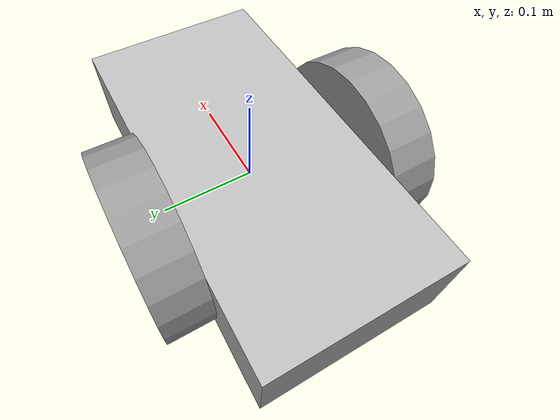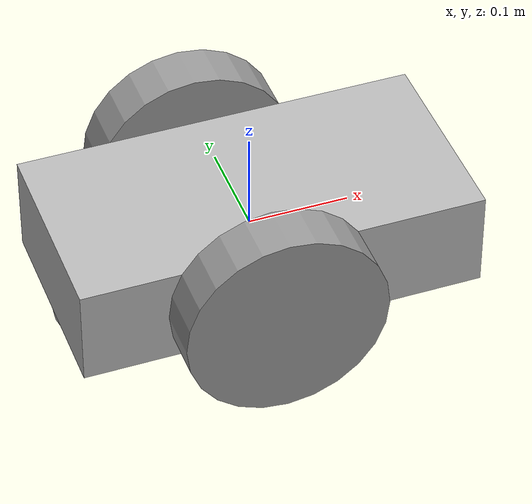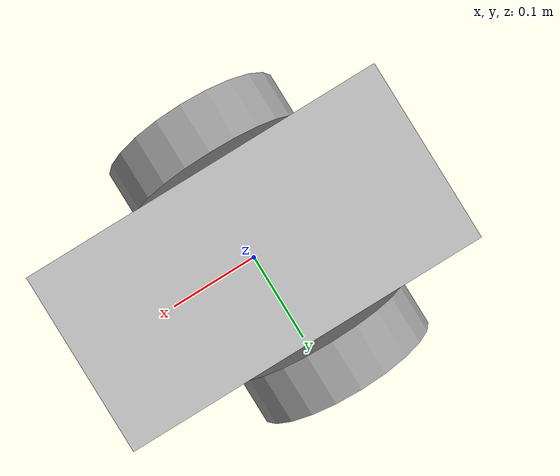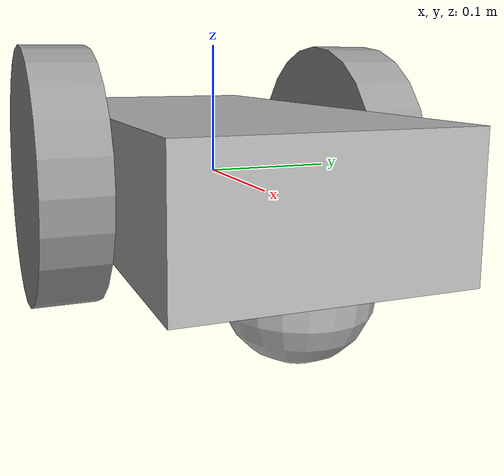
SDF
<?xml version='1.0'?>
<sdf version='1.6'>
  <model name='my_robot'>
    <link name='robot_footprint'>
      <pose frame=''>0 0 0 0 -0 0</pose>
      <inertial>
        <pose frame=''>0 0 0 0 -0 0</pose>
        <mass>15</mass>
        <inertia>
          <ixx>0.1</ixx>
          <ixy>0</ixy>
          <ixz>0</ixz>
          <iyy>0.1</iyy>
          <iyz>0</iyz>
          <izz>0.1</izz>
        </inertia>
      </inertial>
      <self_collide>0</self_collide>
      <enable_wind>0</enable_wind>
      <kinematic>0</kinematic>
      <visual name='robot_footprint_fixed_joint_lump__chassis_visual_visual'>
        <pose frame=''>0 0 0 0 -0 0</pose>
        <geometry>
          <box>
            <size>0.4 0.2 0.1</size>
          </box>
        </geometry>
        <transparency>0</transparency>
        <cast_shadows>1</cast_shadows>
        <material>
          <emissive>0 0 0 1</emissive>
        </material>
      </visual>
      <visual name='robot_footprint_fixed_joint_lump__back_caster_visual_visual_1'>
        <pose frame=''>-0.15 0 -0.05 0 -0 0</pose>
        <geometry>
          <sphere>
            <radius>0.05</radius>
          </sphere>
        </geometry>
        <transparency>0</transparency>
        <cast_shadows>1</cast_shadows>
        <material>
          <emissive>0 0 0 1</emissive>
        </material>
      </visual>
      <visual name='robot_footprint_fixed_joint_lump__front_caster_visual_visual_2'>
        <pose frame=''>0.15 0 -0.05 0 -0 0</pose>
        <geometry>
          <sphere>
            <radius>0.05</radius>
          </sphere>
        </geometry>
        <transparency>0</transparency>
        <cast_shadows>1</cast_shadows>
        <material>
          <emissive>0 0 0 1</emissive>
        </material>
      </visual>
      <collision name='robot_footprint_fixed_joint_lump__collision_collision'>
        <laser_retro>0</laser_retro>
        <max_contacts>10</max_contacts>
        <pose frame=''>0 0 0 0 -0 0</pose>
        <geometry>
          <box>
            <size>0.4 0.2 0.1</size>
          </box>
        </geometry>
        <surface>
          <friction>
            <ode>
              <mu>1</mu>
              <mu2>1</mu2>
              <fdir1>0 0 0</fdir1>
              <slip1>0</slip1>
              <slip2>0</slip2>
            </ode>
            <torsional>
              <coefficient>1</coefficient>
              <patch_radius>0</patch_radius>
              <surface_radius>0</surface_radius>
              <use_patch_radius>1</use_patch_radius>
              <ode>
                <slip>0</slip>
              </ode>
            </torsional>
          </friction>
          <bounce>
            <restitution_coefficient>0</restitution_coefficient>
            <threshold>1e+06</threshold>
          </bounce>
          <contact>
            <collide_without_contact>0</collide_without_contact>
            <collide_without_contact_bitmask>1</collide_without_contact_bitmask>
            <collide_bitmask>1</collide_bitmask>
            <ode>
              <soft_cfm>0</soft_cfm>
              <soft_erp>0.2</soft_erp>
              <kp>1e+13</kp>
              <kd>1</kd>
              <max_vel>0.01</max_vel>
              <min_depth>0</min_depth>
            </ode>
            <bullet>
              <split_impulse>1</split_impulse>
              <split_impulse_penetration_threshold>-0.01</split_impulse_penetration_threshold>
              <soft_cfm>0</soft_cfm>
              <soft_erp>0.2</soft_erp>
              <kp>1e+13</kp>
              <kd>1</kd>
            </bullet>
          </contact>
        </surface>
      </collision>
      <collision name='robot_footprint_fixed_joint_lump__back_caster_collision_collision_1'>
        <laser_retro>0</laser_retro>
        <max_contacts>10</max_contacts>
        <pose frame=''>-0.15 0 -0.05 0 -0 0</pose>
        <geometry>
          <sphere>
            <radius>0.0499</radius>
          </sphere>
        </geometry>
        <surface>
          <friction>
            <ode>
              <mu>1</mu>
              <mu2>1</mu2>
              <fdir1>0 0 0</fdir1>
              <slip1>0</slip1>
              <slip2>0</slip2>
            </ode>
            <torsional>
              <coefficient>1</coefficient>
              <patch_radius>0</patch_radius>
              <surface_radius>0</surface_radius>
              <use_patch_radius>1</use_patch_radius>
              <ode>
                <slip>0</slip>
              </ode>
            </torsional>
          </friction>
          <bounce>
            <restitution_coefficient>0</restitution_coefficient>
            <threshold>1e+06</threshold>
          </bounce>
          <contact>
            <collide_without_contact>0</collide_without_contact>
            <collide_without_contact_bitmask>1</collide_without_contact_bitmask>
            <collide_bitmask>1</collide_bitmask>
            <ode>
              <soft_cfm>0</soft_cfm>
              <soft_erp>0.2</soft_erp>
              <kp>1e+13</kp>
              <kd>1</kd>
              <max_vel>0.01</max_vel>
              <min_depth>0</min_depth>
            </ode>
            <bullet>
              <split_impulse>1</split_impulse>
              <split_impulse_penetration_threshold>-0.01</split_impulse_penetration_threshold>
              <soft_cfm>0</soft_cfm>
              <soft_erp>0.2</soft_erp>
              <kp>1e+13</kp>
              <kd>1</kd>
            </bullet>
          </contact>
        </surface>
      </collision>
      <collision name='robot_footprint_fixed_joint_lump__front_caster_collision_collision_2'>
        <laser_retro>0</laser_retro>
        <max_contacts>10</max_contacts>
        <pose frame=''>0.15 0 -0.05 0 -0 0</pose>
        <geometry>
          <sphere>
            <radius>0.0499</radius>
          </sphere>
        </geometry>
        <surface>
          <friction>
            <ode>
              <mu>1</mu>
              <mu2>1</mu2>
              <fdir1>0 0 0</fdir1>
              <slip1>0</slip1>
              <slip2>0</slip2>
            </ode>
            <torsional>
              <coefficient>1</coefficient>
              <patch_radius>0</patch_radius>
              <surface_radius>0</surface_radius>
              <use_patch_radius>1</use_patch_radius>
              <ode>
                <slip>0</slip>
              </ode>
            </torsional>
          </friction>
          <bounce>
            <restitution_coefficient>0</restitution_coefficient>
            <threshold>1e+06</threshold>
          </bounce>
          <contact>
            <collide_without_contact>0</collide_without_contact>
            <collide_without_contact_bitmask>1</collide_without_contact_bitmask>
            <collide_bitmask>1</collide_bitmask>
            <ode>
              <soft_cfm>0</soft_cfm>
              <soft_erp>0.2</soft_erp>
              <kp>1e+13</kp>
              <kd>1</kd>
              <max_vel>0.01</max_vel>
              <min_depth>0</min_depth>
            </ode>
            <bullet>
              <split_impulse>1</split_impulse>
              <split_impulse_penetration_threshold>-0.01</split_impulse_penetration_threshold>
              <soft_cfm>0</soft_cfm>
              <soft_erp>0.2</soft_erp>
              <kp>1e+13</kp>
              <kd>1</kd>
            </bullet>
          </contact>
        </surface>
      </collision>
    </link>
    <link name='link_0'>
      <inertial>
        <mass>1</mass>
        <inertia>
          <ixx>0.145833</ixx>
          <ixy>0</ixy>
          <ixz>0</ixz>
          <iyy>0.145833</iyy>
          <iyz>0</iyz>
          <izz>0.125</izz>
        </inertia>
        <pose frame=''>0 0 0 0 -0 0</pose>
      </inertial>
      <pose frame=''>-0.02 0.125001 -2e-06 -1e-05 -0 -0</pose>
      <gravity>1</gravity>
      <self_collide>0</self_collide>
      <kinematic>0</kinematic>
      <enable_wind>0</enable_wind>
      <visual name='visual'>
        <pose frame=''>0 0 0 1.5708 -0 0</pose>
        <geometry>
          <cylinder>
            <radius>0.1</radius>
            <length>0.05</length>
          </cylinder>
        </geometry>
        <material>
          <lighting>1</lighting>
          <script>
            <uri>file://media/materials/scripts/gazebo.material</uri>
            <name>Gazebo/Grey</name>
          </script>
          <shader type='vertex'>
            <normal_map>__default__</normal_map>
          </shader>
          <ambient>0.3 0.3 0.3 1</ambient>
          <diffuse>0.7 0.7 0.7 1</diffuse>
          <specular>0.01 0.01 0.01 1</specular>
          <emissive>0 0 0 1</emissive>
        </material>
        <transparency>0</transparency>
        <cast_shadows>1</cast_shadows>
      </visual>
      <collision name='collision'>
        <laser_retro>0</laser_retro>
        <max_contacts>10</max_contacts>
        <pose frame=''>0 0 0 1.5708 -0 0</pose>
        <geometry>
          <cylinder>
            <radius>0.1</radius>
            <length>0.05</length>
          </cylinder>
        </geometry>
        <surface>
          <friction>
            <ode>
              <mu>1</mu>
              <mu2>1</mu2>
              <fdir1>0 0 0</fdir1>
              <slip1>0</slip1>
              <slip2>0</slip2>
            </ode>
            <torsional>
              <coefficient>1</coefficient>
              <patch_radius>0</patch_radius>
              <surface_radius>0</surface_radius>
              <use_patch_radius>1</use_patch_radius>
              <ode>
                <slip>0</slip>
              </ode>
            </torsional>
          </friction>
          <bounce>
            <restitution_coefficient>0</restitution_coefficient>
            <threshold>1e+06</threshold>
          </bounce>
          <contact>
            <collide_without_contact>0</collide_without_contact>
            <collide_without_contact_bitmask>1</collide_without_contact_bitmask>
            <collide_bitmask>1</collide_bitmask>
            <ode>
              <soft_cfm>0</soft_cfm>
              <soft_erp>0.2</soft_erp>
              <kp>1e+13</kp>
              <kd>1</kd>
              <max_vel>0.01</max_vel>
              <min_depth>0</min_depth>
            </ode>
            <bullet>
              <split_impulse>1</split_impulse>
              <split_impulse_penetration_threshold>-0.01</split_impulse_penetration_threshold>
              <soft_cfm>0</soft_cfm>
              <soft_erp>0.2</soft_erp>
              <kp>1e+13</kp>
              <kd>1</kd>
            </bullet>
          </contact>
        </surface>
      </collision>
    </link>
    <link name='link_0_clone'>
      <inertial>
        <mass>1</mass>
        <inertia>
          <ixx>0.145833</ixx>
          <ixy>0</ixy>
          <ixz>0</ixz>
          <iyy>0.145833</iyy>
          <iyz>0</iyz>
          <izz>0.125</izz>
        </inertia>
        <pose frame=''>0 0 0 0 -0 0</pose>
      </inertial>
      <pose frame=''>-0.015613 -0.125002 1e-06 -2e-05 0 0</pose>
      <gravity>1</gravity>
      <self_collide>0</self_collide>
      <kinematic>0</kinematic>
      <enable_wind>0</enable_wind>
      <visual name='visual'>
        <pose frame=''>0 0 0 1.5708 -0 0</pose>
        <geometry>
          <cylinder>
            <radius>0.1</radius>
            <length>0.05</length>
          </cylinder>
        </geometry>
        <material>
          <lighting>1</lighting>
          <script>
            <uri>file://media/materials/scripts/gazebo.material</uri>
            <name>Gazebo/Grey</name>
          </script>
          <shader type='vertex'>
            <normal_map>__default__</normal_map>
          </shader>
          <ambient>0.3 0.3 0.3 1</ambient>
          <diffuse>0.7 0.7 0.7 1</diffuse>
          <specular>0.01 0.01 0.01 1</specular>
          <emissive>0 0 0 1</emissive>
        </material>
        <transparency>0</transparency>
        <cast_shadows>1</cast_shadows>
      </visual>
      <collision name='collision'>
        <laser_retro>0</laser_retro>
        <max_contacts>10</max_contacts>
        <pose frame=''>0 0 0 1.5708 -0 0</pose>
        <geometry>
          <cylinder>
            <radius>0.1</radius>
            <length>0.05</length>
          </cylinder>
        </geometry>
        <surface>
          <friction>
            <ode>
              <mu>1</mu>
              <mu2>1</mu2>
              <fdir1>0 0 0</fdir1>
              <slip1>0</slip1>
              <slip2>0</slip2>
            </ode>
            <torsional>
              <coefficient>1</coefficient>
              <patch_radius>0</patch_radius>
              <surface_radius>0</surface_radius>
              <use_patch_radius>1</use_patch_radius>
              <ode>
                <slip>0</slip>
              </ode>
            </torsional>
          </friction>
          <bounce>
            <restitution_coefficient>0</restitution_coefficient>
            <threshold>1e+06</threshold>
          </bounce>
          <contact>
            <collide_without_contact>0</collide_without_contact>
            <collide_without_contact_bitmask>1</collide_without_contact_bitmask>
            <collide_bitmask>1</collide_bitmask>
            <ode>
              <soft_cfm>0</soft_cfm>
              <soft_erp>0.2</soft_erp>
              <kp>1e+13</kp>
              <kd>1</kd>
              <max_vel>0.01</max_vel>
              <min_depth>0</min_depth>
            </ode>
            <bullet>
              <split_impulse>1</split_impulse>
              <split_impulse_penetration_threshold>-0.01</split_impulse_penetration_threshold>
              <soft_cfm>0</soft_cfm>
              <soft_erp>0.2</soft_erp>
              <kp>1e+13</kp>
              <kd>1</kd>
            </bullet>
          </contact>
        </surface>
      </collision>
    </link>
    <joint name='robot_footprint_JOINT_1' type='revolute'>
      <parent>robot_footprint</parent>
      <child>link_0</child>
      <pose frame=''>0 0 0 0 -0 0</pose>
      <axis>
        <xyz>-0 -1 -0</xyz>
        <use_parent_model_frame>0</use_parent_model_frame>
        <limit>
          <lower>-1.79769e+308</lower>
          <upper>1.79769e+308</upper>
          <effort>-1</effort>
          <velocity>-1</velocity>
        </limit>
        <dynamics>
          <spring_reference>0</spring_reference>
          <spring_stiffness>0</spring_stiffness>
          <damping>0</damping>
        </dynamics>
      </axis>
      <physics>
        <ode>
          <limit>
            <cfm>0</cfm>
            <erp>0.2</erp>
          </limit>
          <suspension>
            <cfm>0</cfm>
            <erp>0.2</erp>
          </suspension>
        </ode>
      </physics>
    </joint>
    <joint name='robot_footprint_JOINT_2' type='revolute'>
      <parent>robot_footprint</parent>
      <child>link_0_clone</child>
      <pose frame=''>0 0 0 0 -0 0</pose>
      <axis>
        <xyz>0 1 0</xyz>
        <use_parent_model_frame>0</use_parent_model_frame>
        <limit>
          <lower>-1.79769e+308</lower>
          <upper>1.79769e+308</upper>
          <effort>-1</effort>
          <velocity>-1</velocity>
        </limit>
        <dynamics>
          <spring_reference>0</spring_reference>
          <spring_stiffness>0</spring_stiffness>
          <damping>0</damping>
        </dynamics>
      </axis>
      <physics>
        <ode>
          <limit>
            <cfm>0</cfm>
            <erp>0.2</erp>
          </limit>
          <suspension>
            <cfm>0</cfm>
            <erp>0.2</erp>
          </suspension>
        </ode>
      </physics>
    </joint>
    <static>0</static>
    <allow_auto_disable>1</allow_auto_disable>
  </model>
</sdf>
